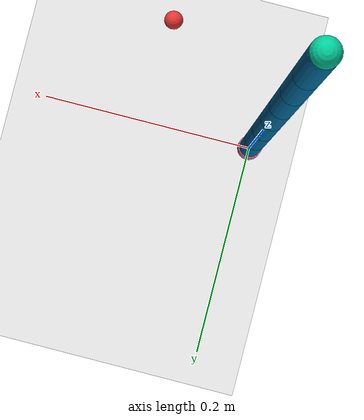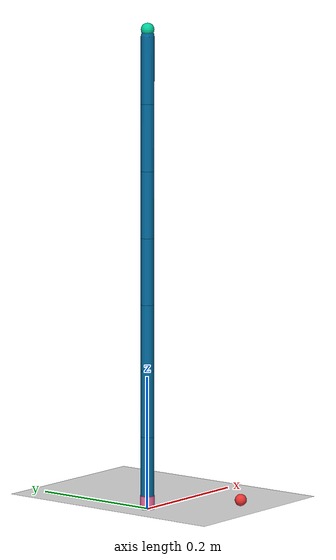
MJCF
<mujoco model="reacher">
	<compiler angle="radian" inertiafromgeom="true"/>

    <default>
		<joint armature="1" damping="1" limited="true"/>
		<geom contype="0" friction="1 0.1 0.1" rgba="0.7 0.7 0 1"/>
	</default>

    <option gravity="0 0 -9.81" integrator="RK4" timestep="0.01"/>

    <worldbody>
		<!-- Arena -->
		<geom conaffinity="0" contype="0" name="ground" pos="0 0 0" rgba="0.9 0.9 0.9 1" size="1 1 10" type="plane"/>

		<!-- Arm -->
		<geom conaffinity="0" contype="0" fromto="0 0 0 0 0 0.02" name="root" rgba="0.9 0.4 0.6 1" size=".011" type="cylinder"/>
		<body name="base" pos="0 0 .01">
			<geom fromto="0 0 0 0 0 0.1" name="link0" rgba="0.0 0.4 0.6 1" size=".01" type="capsule"/>
			<joint axis="0 0 1" limited="true" range="-3.0 3.0" name="j0" pos="0 0 0" type="hinge"/>

            <body name="j0" pos="0 0 0.1">
				<geom fromto="0 0 0 0 0 0.1" name="link1" rgba="0.0 0.4 0.6 1" size=".01" type="capsule"/>
                <joint axis="1 0 0" limited="true" range="-3.0 3.0" name="j1" pos="0 0 0" type="hinge"/>

                <body name="j1" pos="0 0 0.1">
                    <geom fromto="0 0 0 0 0 0.1" name="link2" rgba="0.0 0.4 0.6 1" size=".01" type="capsule"/>
                    <joint axis="0 0 1" limited="true" range="-3.0 3.0" name="j2" pos="0 0 0" type="hinge"/>

                    <body name="j2" pos="0 0 0.1">
                        <geom fromto="0 0 0 0 0 0.1" name="link3" rgba="0.0 0.4 0.6 1" size=".01" type="capsule"/>
                        <joint axis="1 0 0" limited="true" range="-3.0 3.0" name="j3" pos="0 0 0" type="hinge"/>

                        <body name="j3" pos="0 0 0.1">
                            <geom fromto="0 0 0 0 0 0.1" name="link4" rgba="0.0 0.4 0.6 1" size=".01" type="capsule"/>
                            <joint axis="0 0 1" limited="true" range="-3.0 3.0" name="j4" pos="0 0 0" type="hinge"/>

                            <body name="j4" pos="0 0 0.1">
                                <geom fromto="0 0 0 0 0 0.1" name="link5" rgba="0.0 0.4 0.6 1" size=".01" type="capsule"/>
                                <joint axis="1 0 0" limited="true" range="-3.0 3.0" name="j5" pos="0 0 0" type="hinge"/>
                                <body name="j5" pos="0 0 0.1">
                                    <geom fromto="0 0 0 0 0 0.1" name="link6" rgba="0.0 0.4 0.6 1" size=".01" type="capsule"/>
                                    <joint axis="0 1 0" limited="true" range="-3.0 3.0" name="j6" pos="0 0 0" type="hinge"/>
                                    <body name="j6" pos="0 0 0.11">
                                        <geom contype="0" name="fingertip" pos="0 0 0" rgba="0.0 0.8 0.6 1" size=".01" type="sphere"/>
                                    </body>
                                </body>
                            </body>
                        </body>
                    </body>
                </body>
			</body>
        </body>

		<!-- Target -->
		<body name="target" pos=".1 -.1 .01" gravcomp="1">
			<joint armature="0" axis="1 0 0" damping="0" limited="false" name="target_x" pos="0 0 0" type="slide"/>
			<joint armature="0" axis="0 1 0" damping="0" limited="false" name="target_y" pos="0 0 0" type="slide"/>
			<joint armature="0" axis="0 0 1" damping="0" limited="false" name="target_z" pos="0 0 0" type="slide"/>
			<geom conaffinity="0" contype="0" name="target" pos="0 0 0" rgba="0.9 0.2 0.2 1" size=".009" type="sphere"/>
		</body>
	</worldbody>

    <actuator>
		<motor ctrllimited="true" ctrlrange="-1.0 1.0" gear="200.0" joint="j0"/>
		<motor ctrllimited="true" ctrlrange="-1.0 1.0" gear="200.0" joint="j1"/>
		<motor ctrllimited="true" ctrlrange="-1.0 1.0" gear="200.0" joint="j2"/>
		<motor ctrllimited="true" ctrlrange="-1.0 1.0" gear="200.0" joint="j3"/>
		<motor ctrllimited="true" ctrlrange="-1.0 1.0" gear="200.0" joint="j4"/>
		<motor ctrllimited="true" ctrlrange="-1.0 1.0" gear="200.0" joint="j5"/>
		<motor ctrllimited="true" ctrlrange="-1.0 1.0" gear="200.0" joint="j6"/>
	</actuator>
</mujoco>
